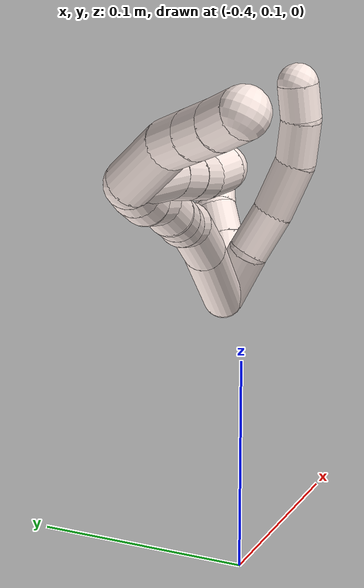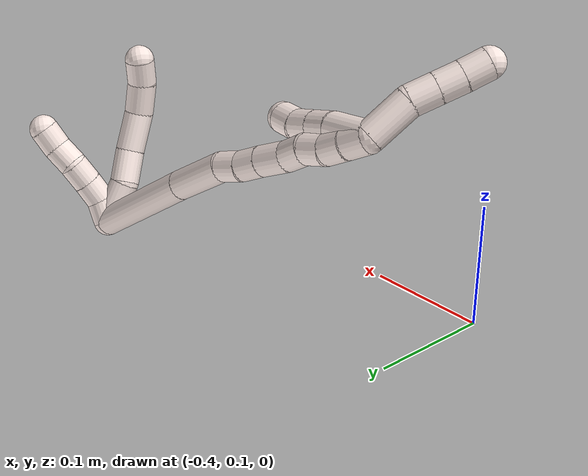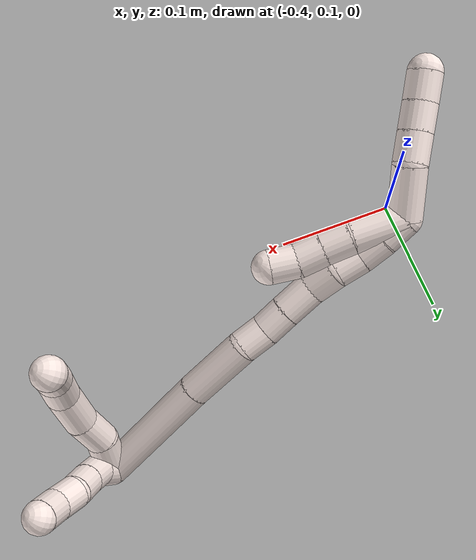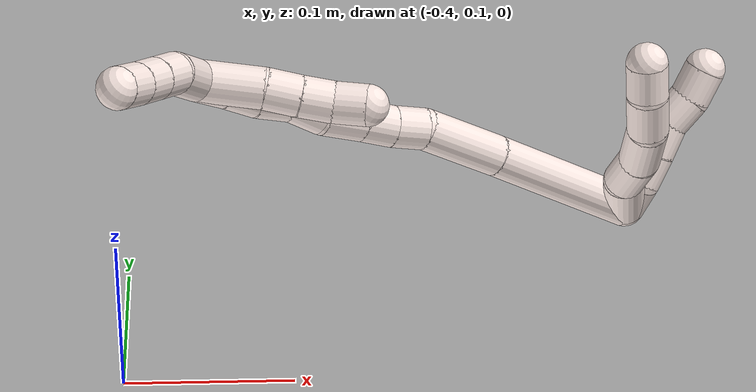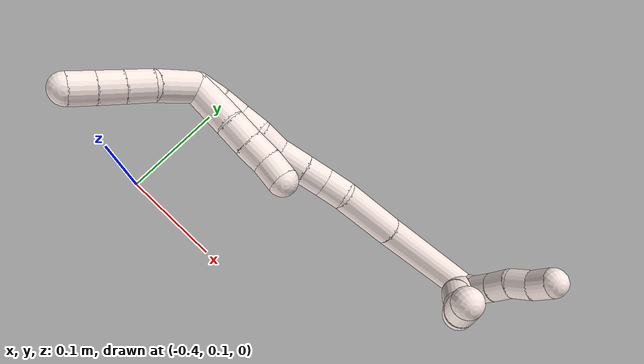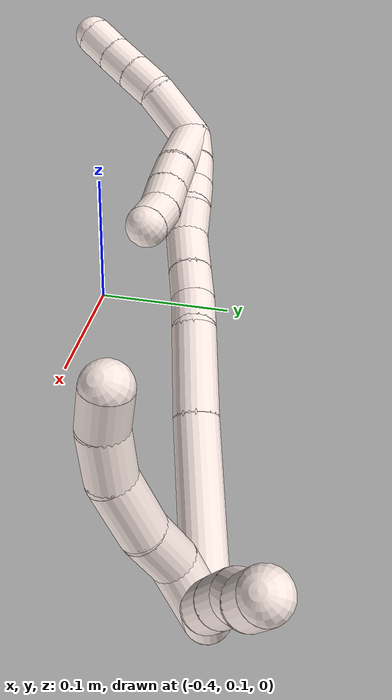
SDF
<sdf version="1.7">
 <world name="default">
  <model name="11">
   <static>0</static>
   <link name="11">
    <collision name="collision-cylinder-e_1_2_8">
     <pose>-0.011289 -0.004387 -0.014351 2.84496 -0.644927 -2.30058</pose>
     <geometry><cylinder><radius>0.0125</radius><length>0.037557</length></cylinder></geometry>
     <surface>
      <friction><ode><mu>1.16</mu><mu2>1.16</mu2><slip1>0</slip1><slip2>0</slip2></ode></friction>
      <contact><ode><kp>1e+06</kp><kd>1</kd><max_vel>0</max_vel><min_depth>0.001</min_depth></ode></contact>
     </surface>
    </collision>
    <visual name="visual-cylinder-e_1_2_8">
     <pose>-0.011289 -0.004387 -0.014351 2.84496 -0.644927 -2.30058</pose>
     <geometry><cylinder><radius>0.0125</radius><length>0.037557</length></cylinder></geometry>
     <material><ambient>1 0.933333 0.909804 1</ambient></material>
    </visual>
    <collision name="collision-cylinder-e_2_8_9">
     <pose>-0.02783 -0.009591 -0.041961 3.07995 -0.376565 -2.82077</pose>
     <geometry><cylinder><radius>0.0125</radius><length>0.028568</length></cylinder></geometry>
     <surface>
      <friction><ode><mu>1.16</mu><mu2>1.16</mu2><slip1>0</slip1><slip2>0</slip2></ode></friction>
      <contact><ode><kp>1e+06</kp><kd>1</kd><max_vel>0</max_vel><min_depth>0.001</min_depth></ode></contact>
     </surface>
    </collision>
    <visual name="visual-cylinder-e_2_8_9">
     <pose>-0.02783 -0.009591 -0.041961 3.07995 -0.376565 -2.82077</pose>
     <geometry><cylinder><radius>0.0125</radius><length>0.028568</length></cylinder></geometry>
     <material><ambient>1 0.933333 0.909804 1</ambient></material>
    </visual>
    <collision name="collision-cylinder-e_3_9_10">
     <pose>-0.041002 -0.014354 -0.070257 2.88508 -0.471154 -2.15554</pose>
     <geometry><cylinder><radius>0.0125</radius><length>0.034896</length></cylinder></geometry>
     <surface>
      <friction><ode><mu>1.16</mu><mu2>1.16</mu2><slip1>0</slip1><slip2>0</slip2></ode></friction>
      <contact><ode><kp>1e+06</kp><kd>1</kd><max_vel>0</max_vel><min_depth>0.001</min_depth></ode></contact>
     </surface>
    </collision>
    <visual name="visual-cylinder-e_3_9_10">
     <pose>-0.041002 -0.014354 -0.070257 2.88508 -0.471154 -2.15554</pose>
     <geometry><cylinder><radius>0.0125</radius><length>0.034896</length></cylinder></geometry>
     <material><ambient>1 0.933333 0.909804 1</ambient></material>
    </visual>
    <collision name="collision-cylinder-e_4_10_11">
     <pose>-0.053907 -0.025089 -0.096103 2.58061 -0.372306 -1.158</pose>
     <geometry><cylinder><radius>0.0125</radius><length>0.027406</length></cylinder></geometry>
     <surface>
      <friction><ode><mu>1.16</mu><mu2>1.16</mu2><slip1>0</slip1><slip2>0</slip2></ode></friction>
      <contact><ode><kp>1e+06</kp><kd>1</kd><max_vel>0</max_vel><min_depth>0.001</min_depth></ode></contact>
     </surface>
    </collision>
    <visual name="visual-cylinder-e_4_10_11">
     <pose>-0.053907 -0.025089 -0.096103 2.58061 -0.372306 -1.158</pose>
     <geometry><cylinder><radius>0.0125</radius><length>0.027406</length></cylinder></geometry>
     <material><ambient>1 0.933333 0.909804 1</ambient></material>
    </visual>
    <collision name="collision-cylinder-e_5_11_6">
     <pose>-0.060867 -0.038795 -0.11495 2.43125 -0.184144 -0.487966</pose>
     <geometry><cylinder><radius>0.0125</radius><length>0.021572</length></cylinder></geometry>
     <surface>
      <friction><ode><mu>1.16</mu><mu2>1.16</mu2><slip1>0</slip1><slip2>0</slip2></ode></friction>
      <contact><ode><kp>1e+06</kp><kd>1</kd><max_vel>0</max_vel><min_depth>0.001</min_depth></ode></contact>
     </surface>
    </collision>
    <visual name="visual-cylinder-e_5_11_6">
     <pose>-0.060867 -0.038795 -0.11495 2.43125 -0.184144 -0.487966</pose>
     <geometry><cylinder><radius>0.0125</radius><length>0.021572</length></cylinder></geometry>
     <material><ambient>1 0.933333 0.909804 1</ambient></material>
    </visual>
    <collision name="collision-cylinder-e_1_2_12">
     <pose>0.000796 -0.002802 -0.009566 2.85667 0.079652 0.541943</pose>
     <geometry><cylinder><radius>0.0125</radius><length>0.02</length></cylinder></geometry>
     <surface>
      <friction><ode><mu>1.16</mu><mu2>1.16</mu2><slip1>0</slip1><slip2>0</slip2></ode></friction>
      <contact><ode><kp>1e+06</kp><kd>1</kd><max_vel>0</max_vel><min_depth>0.001</min_depth></ode></contact>
     </surface>
    </collision>
    <visual name="visual-cylinder-e_1_2_12">
     <pose>0.000796 -0.002802 -0.009566 2.85667 0.079652 0.541943</pose>
     <geometry><cylinder><radius>0.0125</radius><length>0.02</length></cylinder></geometry>
     <material><ambient>1 0.933333 0.909804 1</ambient></material>
    </visual>
    <collision name="collision-cylinder-e_2_12_13">
     <pose>0.005115 -0.010077 -0.027353 2.64323 0.360075 1.24178</pose>
     <geometry><cylinder><radius>0.0125</radius><length>0.02</length></cylinder></geometry>
     <surface>
      <friction><ode><mu>1.16</mu><mu2>1.16</mu2><slip1>0</slip1><slip2>0</slip2></ode></friction>
      <contact><ode><kp>1e+06</kp><kd>1</kd><max_vel>0</max_vel><min_depth>0.001</min_depth></ode></contact>
     </surface>
    </collision>
    <visual name="visual-cylinder-e_2_12_13">
     <pose>0.005115 -0.010077 -0.027353 2.64323 0.360075 1.24178</pose>
     <geometry><cylinder><radius>0.0125</radius><length>0.02</length></cylinder></geometry>
     <material><ambient>1 0.933333 0.909804 1</ambient></material>
    </visual>
    <collision name="collision-cylinder-e_3_13_14">
     <pose>0.012353 -0.019418 -0.04348 2.58978 0.380643 1.19497</pose>
     <geometry><cylinder><radius>0.0125</radius><length>0.02</length></cylinder></geometry>
     <surface>
      <friction><ode><mu>1.16</mu><mu2>1.16</mu2><slip1>0</slip1><slip2>0</slip2></ode></friction>
      <contact><ode><kp>1e+06</kp><kd>1</kd><max_vel>0</max_vel><min_depth>0.001</min_depth></ode></contact>
     </surface>
    </collision>
    <visual name="visual-cylinder-e_3_13_14">
     <pose>0.012353 -0.019418 -0.04348 2.58978 0.380643 1.19497</pose>
     <geometry><cylinder><radius>0.0125</radius><length>0.02</length></cylinder></geometry>
     <material><ambient>1 0.933333 0.909804 1</ambient></material>
    </visual>
    <collision name="collision-cylinder-e_4_14_15">
     <pose>0.021075 -0.026404 -0.059779 2.8943 0.524349 2.27417</pose>
     <geometry><cylinder><radius>0.0125</radius><length>0.02</length></cylinder></geometry>
     <surface>
      <friction><ode><mu>1.16</mu><mu2>1.16</mu2><slip1>0</slip1><slip2>0</slip2></ode></friction>
      <contact><ode><kp>1e+06</kp><kd>1</kd><max_vel>0</max_vel><min_depth>0.001</min_depth></ode></contact>
     </surface>
    </collision>
    <visual name="visual-cylinder-e_4_14_15">
     <pose>0.021075 -0.026404 -0.059779 2.8943 0.524349 2.27417</pose>
     <geometry><cylinder><radius>0.0125</radius><length>0.02</length></cylinder></geometry>
     <material><ambient>1 0.933333 0.909804 1</ambient></material>
    </visual>
    <collision name="collision-cylinder-e_5_15_5">
     <pose>0.029502 -0.032793 -0.076543 2.6698 0.349132 1.26598</pose>
     <geometry><cylinder><radius>0.0125</radius><length>0.02</length></cylinder></geometry>
     <surface>
      <friction><ode><mu>1.16</mu><mu2>1.16</mu2><slip1>0</slip1><slip2>0</slip2></ode></friction>
      <contact><ode><kp>1e+06</kp><kd>1</kd><max_vel>0</max_vel><min_depth>0.001</min_depth></ode></contact>
     </surface>
    </collision>
    <visual name="visual-cylinder-e_5_15_5">
     <pose>0.029502 -0.032793 -0.076543 2.6698 0.349132 1.26598</pose>
     <geometry><cylinder><radius>0.0125</radius><length>0.02</length></cylinder></geometry>
     <material><ambient>1 0.933333 0.909804 1</ambient></material>
    </visual>
    <collision name="collision-cylinder-e_1_2_16">
     <pose>-0.039451 -0.030685 -0.001912 1.63301 -0.908798 -0.958836</pose>
     <geometry><cylinder><radius>0.0125</radius><length>0.100033</length></cylinder></geometry>
     <surface>
      <friction><ode><mu>1.16</mu><mu2>1.16</mu2><slip1>0</slip1><slip2>0</slip2></ode></friction>
      <contact><ode><kp>1e+06</kp><kd>1</kd><max_vel>0</max_vel><min_depth>0.001</min_depth></ode></contact>
     </surface>
    </collision>
    <visual name="visual-cylinder-e_1_2_16">
     <pose>-0.039451 -0.030685 -0.001912 1.63301 -0.908798 -0.958836</pose>
     <geometry><cylinder><radius>0.0125</radius><length>0.100033</length></cylinder></geometry>
     <material><ambient>1 0.933333 0.909804 1</ambient></material>
    </visual>
    <collision name="collision-cylinder-e_2_16_17">
     <pose>-0.099208 -0.077742 -0.003778 1.56802 -0.892231 -0.890069</pose>
     <geometry><cylinder><radius>0.0125</radius><length>0.052166</length></cylinder></geometry>
     <surface>
      <friction><ode><mu>1.16</mu><mu2>1.16</mu2><slip1>0</slip1><slip2>0</slip2></ode></friction>
      <contact><ode><kp>1e+06</kp><kd>1</kd><max_vel>0</max_vel><min_depth>0.001</min_depth></ode></contact>
     </surface>
    </collision>
    <visual name="visual-cylinder-e_2_16_17">
     <pose>-0.099208 -0.077742 -0.003778 1.56802 -0.892231 -0.890069</pose>
     <geometry><cylinder><radius>0.0125</radius><length>0.052166</length></cylinder></geometry>
     <material><ambient>1 0.933333 0.909804 1</ambient></material>
    </visual>
    <collision name="collision-cylinder-e_3_17_18">
     <pose>-0.127737 -0.099533 -0.00095 1.09649 -0.93331 -0.596914</pose>
     <geometry><cylinder><radius>0.0125</radius><length>0.02047</length></cylinder></geometry>
     <surface>
      <friction><ode><mu>1.16</mu><mu2>1.16</mu2><slip1>0</slip1><slip2>0</slip2></ode></friction>
      <contact><ode><kp>1e+06</kp><kd>1</kd><max_vel>0</max_vel><min_depth>0.001</min_depth></ode></contact>
     </surface>
    </collision>
    <visual name="visual-cylinder-e_3_17_18">
     <pose>-0.127737 -0.099533 -0.00095 1.09649 -0.93331 -0.596914</pose>
     <geometry><cylinder><radius>0.0125</radius><length>0.02047</length></cylinder></geometry>
     <material><ambient>1 0.933333 0.909804 1</ambient></material>
    </visual>
    <collision name="collision-cylinder-e_4_18_19">
     <pose>-0.144417 -0.11048 0.00292 1.37648 -0.983045 -0.829451</pose>
     <geometry><cylinder><radius>0.0125</radius><length>0.020321</length></cylinder></geometry>
     <surface>
      <friction><ode><mu>1.16</mu><mu2>1.16</mu2><slip1>0</slip1><slip2>0</slip2></ode></friction>
      <contact><ode><kp>1e+06</kp><kd>1</kd><max_vel>0</max_vel><min_depth>0.001</min_depth></ode></contact>
     </surface>
    </collision>
    <visual name="visual-cylinder-e_4_18_19">
     <pose>-0.144417 -0.11048 0.00292 1.37648 -0.983045 -0.829451</pose>
     <geometry><cylinder><radius>0.0125</radius><length>0.020321</length></cylinder></geometry>
     <material><ambient>1 0.933333 0.909804 1</ambient></material>
    </visual>
    <collision name="collision-cylinder-e_5_19_20">
     <pose>-0.163392 -0.122821 0.005874 1.30345 -0.979424 -0.772461</pose>
     <geometry><cylinder><radius>0.0125</radius><length>0.025341</length></cylinder></geometry>
     <surface>
      <friction><ode><mu>1.16</mu><mu2>1.16</mu2><slip1>0</slip1><slip2>0</slip2></ode></friction>
      <contact><ode><kp>1e+06</kp><kd>1</kd><max_vel>0</max_vel><min_depth>0.001</min_depth></ode></contact>
     </surface>
    </collision>
    <visual name="visual-cylinder-e_5_19_20">
     <pose>-0.163392 -0.122821 0.005874 1.30345 -0.979424 -0.772461</pose>
     <geometry><cylinder><radius>0.0125</radius><length>0.025341</length></cylinder></geometry>
     <material><ambient>1 0.933333 0.909804 1</ambient></material>
    </visual>
    <collision name="collision-cylinder-e_6_20_21">
     <pose>-0.181482 -0.137211 0.008249 1.50374 -0.783952 -0.737692</pose>
     <geometry><cylinder><radius>0.0125</radius><length>0.021448</length></cylinder></geometry>
     <surface>
      <friction><ode><mu>1.16</mu><mu2>1.16</mu2><slip1>0</slip1><slip2>0</slip2></ode></friction>
      <contact><ode><kp>1e+06</kp><kd>1</kd><max_vel>0</max_vel><min_depth>0.001</min_depth></ode></contact>
     </surface>
    </collision>
    <visual name="visual-cylinder-e_6_20_21">
     <pose>-0.181482 -0.137211 0.008249 1.50374 -0.783952 -0.737692</pose>
     <geometry><cylinder><radius>0.0125</radius><length>0.021448</length></cylinder></geometry>
     <material><ambient>1 0.933333 0.909804 1</ambient></material>
    </visual>
    <collision name="collision-cylinder-e_7_21_22">
     <pose>-0.196468 -0.150685 0.012082 1.05756 -0.830737 -0.504394</pose>
     <geometry><cylinder><radius>0.0125</radius><length>0.020079</length></cylinder></geometry>
     <surface>
      <friction><ode><mu>1.16</mu><mu2>1.16</mu2><slip1>0</slip1><slip2>0</slip2></ode></friction>
      <contact><ode><kp>1e+06</kp><kd>1</kd><max_vel>0</max_vel><min_depth>0.001</min_depth></ode></contact>
     </surface>
    </collision>
    <visual name="visual-cylinder-e_7_21_22">
     <pose>-0.196468 -0.150685 0.012082 1.05756 -0.830737 -0.504394</pose>
     <geometry><cylinder><radius>0.0125</radius><length>0.020079</length></cylinder></geometry>
     <material><ambient>1 0.933333 0.909804 1</ambient></material>
    </visual>
    <collision name="collision-cylinder-e_8_22_23">
     <pose>-0.211575 -0.162987 0.016408 1.41563 -0.870667 -0.757553</pose>
     <geometry><cylinder><radius>0.0125</radius><length>0.02012</length></cylinder></geometry>
     <surface>
      <friction><ode><mu>1.16</mu><mu2>1.16</mu2><slip1>0</slip1><slip2>0</slip2></ode></friction>
      <contact><ode><kp>1e+06</kp><kd>1</kd><max_vel>0</max_vel><min_depth>0.001</min_depth></ode></contact>
     </surface>
    </collision>
    <visual name="visual-cylinder-e_8_22_23">
     <pose>-0.211575 -0.162987 0.016408 1.41563 -0.870667 -0.757553</pose>
     <geometry><cylinder><radius>0.0125</radius><length>0.02012</length></cylinder></geometry>
     <material><ambient>1 0.933333 0.909804 1</ambient></material>
    </visual>
    <collision name="collision-cylinder-e_9_23_1">
     <pose>-0.227473 -0.175083 0.018126 1.44549 -0.960601 -0.861426</pose>
     <geometry><cylinder><radius>0.0125</radius><length>0.020022</length></cylinder></geometry>
     <surface>
      <friction><ode><mu>1.16</mu><mu2>1.16</mu2><slip1>0</slip1><slip2>0</slip2></ode></friction>
      <contact><ode><kp>1e+06</kp><kd>1</kd><max_vel>0</max_vel><min_depth>0.001</min_depth></ode></contact>
     </surface>
    </collision>
    <visual name="visual-cylinder-e_9_23_1">
     <pose>-0.227473 -0.175083 0.018126 1.44549 -0.960601 -0.861426</pose>
     <geometry><cylinder><radius>0.0125</radius><length>0.020022</length></cylinder></geometry>
     <material><ambient>1 0.933333 0.909804 1</ambient></material>
    </visual>
    <collision name="collision-cylinder-e_1_1_24">
     <pose>-0.224136 -0.168184 0.009491 -2.20969 0.634409 -1.15671</pose>
     <geometry><cylinder><radius>0.0125</radius><length>0.038944</length></cylinder></geometry>
     <surface>
      <friction><ode><mu>1.16</mu><mu2>1.16</mu2><slip1>0</slip1><slip2>0</slip2></ode></friction>
      <contact><ode><kp>1e+06</kp><kd>1</kd><max_vel>0</max_vel><min_depth>0.001</min_depth></ode></contact>
     </surface>
    </collision>
    <visual name="visual-cylinder-e_1_1_24">
     <pose>-0.224136 -0.168184 0.009491 -2.20969 0.634409 -1.15671</pose>
     <geometry><cylinder><radius>0.0125</radius><length>0.038944</length></cylinder></geometry>
     <material><ambient>1 0.933333 0.909804 1</ambient></material>
    </visual>
    <collision name="collision-cylinder-e_2_24_25">
     <pose>-0.206144 -0.148359 -0.003631 -2.05114 0.668996 -1.04066</pose>
     <geometry><cylinder><radius>0.0125</radius><length>0.020802</length></cylinder></geometry>
     <surface>
      <friction><ode><mu>1.16</mu><mu2>1.16</mu2><slip1>0</slip1><slip2>0</slip2></ode></friction>
      <contact><ode><kp>1e+06</kp><kd>1</kd><max_vel>0</max_vel><min_depth>0.001</min_depth></ode></contact>
     </surface>
    </collision>
    <visual name="visual-cylinder-e_2_24_25">
     <pose>-0.206144 -0.148359 -0.003631 -2.05114 0.668996 -1.04066</pose>
     <geometry><cylinder><radius>0.0125</radius><length>0.020802</length></cylinder></geometry>
     <material><ambient>1 0.933333 0.909804 1</ambient></material>
    </visual>
    <collision name="collision-cylinder-e_3_25_26">
     <pose>-0.193117 -0.134473 -0.01108 -2.07605 0.71328 -1.12703</pose>
     <geometry><cylinder><radius>0.0125</radius><length>0.0201</length></cylinder></geometry>
     <surface>
      <friction><ode><mu>1.16</mu><mu2>1.16</mu2><slip1>0</slip1><slip2>0</slip2></ode></friction>
      <contact><ode><kp>1e+06</kp><kd>1</kd><max_vel>0</max_vel><min_depth>0.001</min_depth></ode></contact>
     </surface>
    </collision>
    <visual name="visual-cylinder-e_3_25_26">
     <pose>-0.193117 -0.134473 -0.01108 -2.07605 0.71328 -1.12703</pose>
     <geometry><cylinder><radius>0.0125</radius><length>0.0201</length></cylinder></geometry>
     <material><ambient>1 0.933333 0.909804 1</ambient></material>
    </visual>
    <collision name="collision-cylinder-e_4_26_4">
     <pose>-0.181494 -0.121335 -0.020589 -2.30292 0.524617 -1.08423</pose>
     <geometry><cylinder><radius>0.0125</radius><length>0.020153</length></cylinder></geometry>
     <surface>
      <friction><ode><mu>1.16</mu><mu2>1.16</mu2><slip1>0</slip1><slip2>0</slip2></ode></friction>
      <contact><ode><kp>1e+06</kp><kd>1</kd><max_vel>0</max_vel><min_depth>0.001</min_depth></ode></contact>
     </surface>
    </collision>
    <visual name="visual-cylinder-e_4_26_4">
     <pose>-0.181494 -0.121335 -0.020589 -2.30292 0.524617 -1.08423</pose>
     <geometry><cylinder><radius>0.0125</radius><length>0.020153</length></cylinder></geometry>
     <material><ambient>1 0.933333 0.909804 1</ambient></material>
    </visual>
    <collision name="collision-cylinder-e_1_1_27">
     <pose>-0.252068 -0.18257 0.009775 2.94609 -1.05727 -2.8089</pose>
     <geometry><cylinder><radius>0.0125</radius><length>0.037637</length></cylinder></geometry>
     <surface>
      <friction><ode><mu>1.16</mu><mu2>1.16</mu2><slip1>0</slip1><slip2>0</slip2></ode></friction>
      <contact><ode><kp>1e+06</kp><kd>1</kd><max_vel>0</max_vel><min_depth>0.001</min_depth></ode></contact>
     </surface>
    </collision>
    <visual name="visual-cylinder-e_1_1_27">
     <pose>-0.252068 -0.18257 0.009775 2.94609 -1.05727 -2.8089</pose>
     <geometry><cylinder><radius>0.0125</radius><length>0.037637</length></cylinder></geometry>
     <material><ambient>1 0.933333 0.909804 1</ambient></material>
    </visual>
    <collision name="collision-cylinder-e_2_27_28">
     <pose>-0.27898 -0.184204 -0.001608 -3.07168 -1.35373 3.0546</pose>
     <geometry><cylinder><radius>0.0125</radius><length>0.021546</length></cylinder></geometry>
     <surface>
      <friction><ode><mu>1.16</mu><mu2>1.16</mu2><slip1>0</slip1><slip2>0</slip2></ode></friction>
      <contact><ode><kp>1e+06</kp><kd>1</kd><max_vel>0</max_vel><min_depth>0.001</min_depth></ode></contact>
     </surface>
    </collision>
    <visual name="visual-cylinder-e_2_27_28">
     <pose>-0.27898 -0.184204 -0.001608 -3.07168 -1.35373 3.0546</pose>
     <geometry><cylinder><radius>0.0125</radius><length>0.021546</length></cylinder></geometry>
     <material><ambient>1 0.933333 0.909804 1</ambient></material>
    </visual>
    <collision name="collision-cylinder-e_3_28_29">
     <pose>-0.29939 -0.183928 -0.006049 -3.08795 -1.3587 3.07517</pose>
     <geometry><cylinder><radius>0.0125</radius><length>0.020233</length></cylinder></geometry>
     <surface>
      <friction><ode><mu>1.16</mu><mu2>1.16</mu2><slip1>0</slip1><slip2>0</slip2></ode></friction>
      <contact><ode><kp>1e+06</kp><kd>1</kd><max_vel>0</max_vel><min_depth>0.001</min_depth></ode></contact>
     </surface>
    </collision>
    <visual name="visual-cylinder-e_3_28_29">
     <pose>-0.29939 -0.183928 -0.006049 -3.08795 -1.3587 3.07517</pose>
     <geometry><cylinder><radius>0.0125</radius><length>0.020233</length></cylinder></geometry>
     <material><ambient>1 0.933333 0.909804 1</ambient></material>
    </visual>
    <collision name="collision-cylinder-e_4_29_3">
     <pose>-0.319244 -0.183862 -0.010753 3.12282 -1.3177 -3.11734</pose>
     <geometry><cylinder><radius>0.0125</radius><length>0.020583</length></cylinder></geometry>
     <surface>
      <friction><ode><mu>1.16</mu><mu2>1.16</mu2><slip1>0</slip1><slip2>0</slip2></ode></friction>
      <contact><ode><kp>1e+06</kp><kd>1</kd><max_vel>0</max_vel><min_depth>0.001</min_depth></ode></contact>
     </surface>
    </collision>
    <visual name="visual-cylinder-e_4_29_3">
     <pose>-0.319244 -0.183862 -0.010753 3.12282 -1.3177 -3.11734</pose>
     <geometry><cylinder><radius>0.0125</radius><length>0.020583</length></cylinder></geometry>
     <material><ambient>1 0.933333 0.909804 1</ambient></material>
    </visual>
    <collision name="collision-sphere-3">
     <pose>-0.329208 -0.18391 -0.013329 0 -0 0</pose>
     <geometry><sphere><radius>0.0125</radius></sphere></geometry>
     <surface>
      <friction><ode><mu>1.16</mu><mu2>1.16</mu2><slip1>0</slip1><slip2>0</slip2></ode></friction>
      <contact><ode><kp>1e+06</kp><kd>1</kd><max_vel>0</max_vel><min_depth>0.001</min_depth></ode></contact>
     </surface>
    </collision>
    <visual name="visual-sphere-3">
     <pose>-0.329208 -0.18391 -0.013329 0 -0 0</pose>
     <geometry><sphere><radius>0.0125</radius></sphere></geometry>
     <material><ambient>1 0.933333 0.909804 1</ambient></material>
    </visual>
    <collision name="collision-sphere-29">
     <pose>-0.30928 -0.183813 -0.008176 0 -0 0</pose>
     <geometry><sphere><radius>0.0125</radius></sphere></geometry>
     <surface>
      <friction><ode><mu>1.16</mu><mu2>1.16</mu2><slip1>0</slip1><slip2>0</slip2></ode></friction>
      <contact><ode><kp>1e+06</kp><kd>1</kd><max_vel>0</max_vel><min_depth>0.001</min_depth></ode></contact>
     </surface>
    </collision>
    <visual name="visual-sphere-29">
     <pose>-0.30928 -0.183813 -0.008176 0 -0 0</pose>
     <geometry><sphere><radius>0.0125</radius></sphere></geometry>
     <material><ambient>1 0.933333 0.909804 1</ambient></material>
    </visual>
    <collision name="collision-sphere-28">
     <pose>-0.289501 -0.184042 -0.003923 0 -0 0</pose>
     <geometry><sphere><radius>0.0125</radius></sphere></geometry>
     <surface>
      <friction><ode><mu>1.16</mu><mu2>1.16</mu2><slip1>0</slip1><slip2>0</slip2></ode></friction>
      <contact><ode><kp>1e+06</kp><kd>1</kd><max_vel>0</max_vel><min_depth>0.001</min_depth></ode></contact>
     </surface>
    </collision>
    <visual name="visual-sphere-28">
     <pose>-0.289501 -0.184042 -0.003923 0 -0 0</pose>
     <geometry><sphere><radius>0.0125</radius></sphere></geometry>
     <material><ambient>1 0.933333 0.909804 1</ambient></material>
    </visual>
    <collision name="collision-sphere-27">
     <pose>-0.26846 -0.184366 0.000706 0 -0 0</pose>
     <geometry><sphere><radius>0.0125</radius></sphere></geometry>
     <surface>
      <friction><ode><mu>1.16</mu><mu2>1.16</mu2><slip1>0</slip1><slip2>0</slip2></ode></friction>
      <contact><ode><kp>1e+06</kp><kd>1</kd><max_vel>0</max_vel><min_depth>0.001</min_depth></ode></contact>
     </surface>
    </collision>
    <visual name="visual-sphere-27">
     <pose>-0.26846 -0.184366 0.000706 0 -0 0</pose>
     <geometry><sphere><radius>0.0125</radius></sphere></geometry>
     <material><ambient>1 0.933333 0.909804 1</ambient></material>
    </visual>
    <collision name="collision-sphere-4">
     <pose>-0.176447 -0.114849 -0.026419 0 -0 0</pose>
     <geometry><sphere><radius>0.0125</radius></sphere></geometry>
     <surface>
      <friction><ode><mu>1.16</mu><mu2>1.16</mu2><slip1>0</slip1><slip2>0</slip2></ode></friction>
      <contact><ode><kp>1e+06</kp><kd>1</kd><max_vel>0</max_vel><min_depth>0.001</min_depth></ode></contact>
     </surface>
    </collision>
    <visual name="visual-sphere-4">
     <pose>-0.176447 -0.114849 -0.026419 0 -0 0</pose>
     <geometry><sphere><radius>0.0125</radius></sphere></geometry>
     <material><ambient>1 0.933333 0.909804 1</ambient></material>
    </visual>
    <collision name="collision-sphere-26">
     <pose>-0.186541 -0.127822 -0.014759 0 -0 0</pose>
     <geometry><sphere><radius>0.0125</radius></sphere></geometry>
     <surface>
      <friction><ode><mu>1.16</mu><mu2>1.16</mu2><slip1>0</slip1><slip2>0</slip2></ode></friction>
      <contact><ode><kp>1e+06</kp><kd>1</kd><max_vel>0</max_vel><min_depth>0.001</min_depth></ode></contact>
     </surface>
    </collision>
    <visual name="visual-sphere-26">
     <pose>-0.186541 -0.127822 -0.014759 0 -0 0</pose>
     <geometry><sphere><radius>0.0125</radius></sphere></geometry>
     <material><ambient>1 0.933333 0.909804 1</ambient></material>
    </visual>
    <collision name="collision-sphere-25">
     <pose>-0.199693 -0.141123 -0.007401 0 -0 0</pose>
     <geometry><sphere><radius>0.0125</radius></sphere></geometry>
     <surface>
      <friction><ode><mu>1.16</mu><mu2>1.16</mu2><slip1>0</slip1><slip2>0</slip2></ode></friction>
      <contact><ode><kp>1e+06</kp><kd>1</kd><max_vel>0</max_vel><min_depth>0.001</min_depth></ode></contact>
     </surface>
    </collision>
    <visual name="visual-sphere-25">
     <pose>-0.199693 -0.141123 -0.007401 0 -0 0</pose>
     <geometry><sphere><radius>0.0125</radius></sphere></geometry>
     <material><ambient>1 0.933333 0.909804 1</ambient></material>
    </visual>
    <collision name="collision-sphere-24">
     <pose>-0.212595 -0.155595 0.000139 0 -0 0</pose>
     <geometry><sphere><radius>0.0125</radius></sphere></geometry>
     <surface>
      <friction><ode><mu>1.16</mu><mu2>1.16</mu2><slip1>0</slip1><slip2>0</slip2></ode></friction>
      <contact><ode><kp>1e+06</kp><kd>1</kd><max_vel>0</max_vel><min_depth>0.001</min_depth></ode></contact>
     </surface>
    </collision>
    <visual name="visual-sphere-24">
     <pose>-0.212595 -0.155595 0.000139 0 -0 0</pose>
     <geometry><sphere><radius>0.0125</radius></sphere></geometry>
     <material><ambient>1 0.933333 0.909804 1</ambient></material>
    </visual>
    <collision name="collision-sphere-1">
     <pose>-0.235677 -0.180774 0.018843 0 -0 0</pose>
     <geometry><sphere><radius>0.0125</radius></sphere></geometry>
     <surface>
      <friction><ode><mu>1.16</mu><mu2>1.16</mu2><slip1>0</slip1><slip2>0</slip2></ode></friction>
      <contact><ode><kp>1e+06</kp><kd>1</kd><max_vel>0</max_vel><min_depth>0.001</min_depth></ode></contact>
     </surface>
    </collision>
    <visual name="visual-sphere-1">
     <pose>-0.235677 -0.180774 0.018843 0 -0 0</pose>
     <geometry><sphere><radius>0.0125</radius></sphere></geometry>
     <material><ambient>1 0.933333 0.909804 1</ambient></material>
    </visual>
    <collision name="collision-sphere-23">
     <pose>-0.219268 -0.169391 0.017409 0 -0 0</pose>
     <geometry><sphere><radius>0.0125</radius></sphere></geometry>
     <surface>
      <friction><ode><mu>1.16</mu><mu2>1.16</mu2><slip1>0</slip1><slip2>0</slip2></ode></friction>
      <contact><ode><kp>1e+06</kp><kd>1</kd><max_vel>0</max_vel><min_depth>0.001</min_depth></ode></contact>
     </surface>
    </collision>
    <visual name="visual-sphere-23">
     <pose>-0.219268 -0.169391 0.017409 0 -0 0</pose>
     <geometry><sphere><radius>0.0125</radius></sphere></geometry>
     <material><ambient>1 0.933333 0.909804 1</ambient></material>
    </visual>
    <collision name="collision-sphere-22">
     <pose>-0.203882 -0.156583 0.015406 0 -0 0</pose>
     <geometry><sphere><radius>0.0125</radius></sphere></geometry>
     <surface>
      <friction><ode><mu>1.16</mu><mu2>1.16</mu2><slip1>0</slip1><slip2>0</slip2></ode></friction>
      <contact><ode><kp>1e+06</kp><kd>1</kd><max_vel>0</max_vel><min_depth>0.001</min_depth></ode></contact>
     </surface>
    </collision>
    <visual name="visual-sphere-22">
     <pose>-0.203882 -0.156583 0.015406 0 -0 0</pose>
     <geometry><sphere><radius>0.0125</radius></sphere></geometry>
     <material><ambient>1 0.933333 0.909804 1</ambient></material>
    </visual>
    <collision name="collision-sphere-21">
     <pose>-0.189054 -0.144788 0.008758 0 -0 0</pose>
     <geometry><sphere><radius>0.0125</radius></sphere></geometry>
     <surface>
      <friction><ode><mu>1.16</mu><mu2>1.16</mu2><slip1>0</slip1><slip2>0</slip2></ode></friction>
      <contact><ode><kp>1e+06</kp><kd>1</kd><max_vel>0</max_vel><min_depth>0.001</min_depth></ode></contact>
     </surface>
    </collision>
    <visual name="visual-sphere-21">
     <pose>-0.189054 -0.144788 0.008758 0 -0 0</pose>
     <geometry><sphere><radius>0.0125</radius></sphere></geometry>
     <material><ambient>1 0.933333 0.909804 1</ambient></material>
    </visual>
    <collision name="collision-sphere-6">
     <pose>-0.062842 -0.04571 -0.12299 0 -0 0</pose>
     <geometry><sphere><radius>0.0125</radius></sphere></geometry>
     <surface>
      <friction><ode><mu>1.16</mu><mu2>1.16</mu2><slip1>0</slip1><slip2>0</slip2></ode></friction>
      <contact><ode><kp>1e+06</kp><kd>1</kd><max_vel>0</max_vel><min_depth>0.001</min_depth></ode></contact>
     </surface>
    </collision>
    <visual name="visual-sphere-6">
     <pose>-0.062842 -0.04571 -0.12299 0 -0 0</pose>
     <geometry><sphere><radius>0.0125</radius></sphere></geometry>
     <material><ambient>1 0.933333 0.909804 1</ambient></material>
    </visual>
    <collision name="collision-sphere-11">
     <pose>-0.058892 -0.03188 -0.106911 0 -0 0</pose>
     <geometry><sphere><radius>0.0125</radius></sphere></geometry>
     <surface>
      <friction><ode><mu>1.16</mu><mu2>1.16</mu2><slip1>0</slip1><slip2>0</slip2></ode></friction>
      <contact><ode><kp>1e+06</kp><kd>1</kd><max_vel>0</max_vel><min_depth>0.001</min_depth></ode></contact>
     </surface>
    </collision>
    <visual name="visual-sphere-11">
     <pose>-0.058892 -0.03188 -0.106911 0 -0 0</pose>
     <geometry><sphere><radius>0.0125</radius></sphere></geometry>
     <material><ambient>1 0.933333 0.909804 1</ambient></material>
    </visual>
    <collision name="collision-sphere-10">
     <pose>-0.048922 -0.018298 -0.085295 0 -0 0</pose>
     <geometry><sphere><radius>0.0125</radius></sphere></geometry>
     <surface>
      <friction><ode><mu>1.16</mu><mu2>1.16</mu2><slip1>0</slip1><slip2>0</slip2></ode></friction>
      <contact><ode><kp>1e+06</kp><kd>1</kd><max_vel>0</max_vel><min_depth>0.001</min_depth></ode></contact>
     </surface>
    </collision>
    <visual name="visual-sphere-10">
     <pose>-0.048922 -0.018298 -0.085295 0 -0 0</pose>
     <geometry><sphere><radius>0.0125</radius></sphere></geometry>
     <material><ambient>1 0.933333 0.909804 1</ambient></material>
    </visual>
    <collision name="collision-sphere-9">
     <pose>-0.033082 -0.01041 -0.055219 0 -0 0</pose>
     <geometry><sphere><radius>0.0125</radius></sphere></geometry>
     <surface>
      <friction><ode><mu>1.16</mu><mu2>1.16</mu2><slip1>0</slip1><slip2>0</slip2></ode></friction>
      <contact><ode><kp>1e+06</kp><kd>1</kd><max_vel>0</max_vel><min_depth>0.001</min_depth></ode></contact>
     </surface>
    </collision>
    <visual name="visual-sphere-9">
     <pose>-0.033082 -0.01041 -0.055219 0 -0 0</pose>
     <geometry><sphere><radius>0.0125</radius></sphere></geometry>
     <material><ambient>1 0.933333 0.909804 1</ambient></material>
    </visual>
    <collision name="collision-sphere-2">
     <geometry><sphere><radius>0.0125</radius></sphere></geometry>
     <surface>
      <friction><ode><mu>1.16</mu><mu2>1.16</mu2><slip1>0</slip1><slip2>0</slip2></ode></friction>
      <contact><ode><kp>1e+06</kp><kd>1</kd><max_vel>0</max_vel><min_depth>0.001</min_depth></ode></contact>
     </surface>
    </collision>
    <visual name="visual-sphere-2">
     <geometry><sphere><radius>0.0125</radius></sphere></geometry>
     <material><ambient>1 0.933333 0.909804 1</ambient></material>
    </visual>
    <collision name="collision-sphere-19">
     <pose>-0.152873 -0.116008 0.004008 0 -0 0</pose>
     <geometry><sphere><radius>0.0125</radius></sphere></geometry>
     <surface>
      <friction><ode><mu>1.16</mu><mu2>1.16</mu2><slip1>0</slip1><slip2>0</slip2></ode></friction>
      <contact><ode><kp>1e+06</kp><kd>1</kd><max_vel>0</max_vel><min_depth>0.001</min_depth></ode></contact>
     </surface>
    </collision>
    <visual name="visual-sphere-19">
     <pose>-0.152873 -0.116008 0.004008 0 -0 0</pose>
     <geometry><sphere><radius>0.0125</radius></sphere></geometry>
     <material><ambient>1 0.933333 0.909804 1</ambient></material>
    </visual>
    <collision name="collision-sphere-8">
     <pose>-0.022577 -0.008773 -0.028703 0 -0 0</pose>
     <geometry><sphere><radius>0.0125</radius></sphere></geometry>
     <surface>
      <friction><ode><mu>1.16</mu><mu2>1.16</mu2><slip1>0</slip1><slip2>0</slip2></ode></friction>
      <contact><ode><kp>1e+06</kp><kd>1</kd><max_vel>0</max_vel><min_depth>0.001</min_depth></ode></contact>
     </surface>
    </collision>
    <visual name="visual-sphere-8">
     <pose>-0.022577 -0.008773 -0.028703 0 -0 0</pose>
     <geometry><sphere><radius>0.0125</radius></sphere></geometry>
     <material><ambient>1 0.933333 0.909804 1</ambient></material>
    </visual>
    <collision name="collision-sphere-12">
     <pose>0.001591 -0.005604 -0.019133 0 -0 0</pose>
     <geometry><sphere><radius>0.0125</radius></sphere></geometry>
     <surface>
      <friction><ode><mu>1.16</mu><mu2>1.16</mu2><slip1>0</slip1><slip2>0</slip2></ode></friction>
      <contact><ode><kp>1e+06</kp><kd>1</kd><max_vel>0</max_vel><min_depth>0.001</min_depth></ode></contact>
     </surface>
    </collision>
    <visual name="visual-sphere-12">
     <pose>0.001591 -0.005604 -0.019133 0 -0 0</pose>
     <geometry><sphere><radius>0.0125</radius></sphere></geometry>
     <material><ambient>1 0.933333 0.909804 1</ambient></material>
    </visual>
    <collision name="collision-sphere-13">
     <pose>0.008638 -0.014551 -0.035574 0 -0 0</pose>
     <geometry><sphere><radius>0.0125</radius></sphere></geometry>
     <surface>
      <friction><ode><mu>1.16</mu><mu2>1.16</mu2><slip1>0</slip1><slip2>0</slip2></ode></friction>
      <contact><ode><kp>1e+06</kp><kd>1</kd><max_vel>0</max_vel><min_depth>0.001</min_depth></ode></contact>
     </surface>
    </collision>
    <visual name="visual-sphere-13">
     <pose>0.008638 -0.014551 -0.035574 0 -0 0</pose>
     <geometry><sphere><radius>0.0125</radius></sphere></geometry>
     <material><ambient>1 0.933333 0.909804 1</ambient></material>
    </visual>
    <collision name="collision-sphere-14">
     <pose>0.016069 -0.024285 -0.051386 0 -0 0</pose>
     <geometry><sphere><radius>0.0125</radius></sphere></geometry>
     <surface>
      <friction><ode><mu>1.16</mu><mu2>1.16</mu2><slip1>0</slip1><slip2>0</slip2></ode></friction>
      <contact><ode><kp>1e+06</kp><kd>1</kd><max_vel>0</max_vel><min_depth>0.001</min_depth></ode></contact>
     </surface>
    </collision>
    <visual name="visual-sphere-14">
     <pose>0.016069 -0.024285 -0.051386 0 -0 0</pose>
     <geometry><sphere><radius>0.0125</radius></sphere></geometry>
     <material><ambient>1 0.933333 0.909804 1</ambient></material>
    </visual>
    <collision name="collision-sphere-15">
     <pose>0.026082 -0.028523 -0.068172 0 -0 0</pose>
     <geometry><sphere><radius>0.0125</radius></sphere></geometry>
     <surface>
      <friction><ode><mu>1.16</mu><mu2>1.16</mu2><slip1>0</slip1><slip2>0</slip2></ode></friction>
      <contact><ode><kp>1e+06</kp><kd>1</kd><max_vel>0</max_vel><min_depth>0.001</min_depth></ode></contact>
     </surface>
    </collision>
    <visual name="visual-sphere-15">
     <pose>0.026082 -0.028523 -0.068172 0 -0 0</pose>
     <geometry><sphere><radius>0.0125</radius></sphere></geometry>
     <material><ambient>1 0.933333 0.909804 1</ambient></material>
    </visual>
    <collision name="collision-sphere-5">
     <pose>0.032923 -0.037064 -0.084913 0 -0 0</pose>
     <geometry><sphere><radius>0.0125</radius></sphere></geometry>
     <surface>
      <friction><ode><mu>1.16</mu><mu2>1.16</mu2><slip1>0</slip1><slip2>0</slip2></ode></friction>
      <contact><ode><kp>1e+06</kp><kd>1</kd><max_vel>0</max_vel><min_depth>0.001</min_depth></ode></contact>
     </surface>
    </collision>
    <visual name="visual-sphere-5">
     <pose>0.032923 -0.037064 -0.084913 0 -0 0</pose>
     <geometry><sphere><radius>0.0125</radius></sphere></geometry>
     <material><ambient>1 0.933333 0.909804 1</ambient></material>
    </visual>
    <collision name="collision-sphere-16">
     <pose>-0.078903 -0.061371 -0.003823 0 -0 0</pose>
     <geometry><sphere><radius>0.0125</radius></sphere></geometry>
     <surface>
      <friction><ode><mu>1.16</mu><mu2>1.16</mu2><slip1>0</slip1><slip2>0</slip2></ode></friction>
      <contact><ode><kp>1e+06</kp><kd>1</kd><max_vel>0</max_vel><min_depth>0.001</min_depth></ode></contact>
     </surface>
    </collision>
    <visual name="visual-sphere-16">
     <pose>-0.078903 -0.061371 -0.003823 0 -0 0</pose>
     <geometry><sphere><radius>0.0125</radius></sphere></geometry>
     <material><ambient>1 0.933333 0.909804 1</ambient></material>
    </visual>
    <collision name="collision-sphere-17">
     <pose>-0.119513 -0.094114 -0.003732 0 -0 0</pose>
     <geometry><sphere><radius>0.0125</radius></sphere></geometry>
     <surface>
      <friction><ode><mu>1.16</mu><mu2>1.16</mu2><slip1>0</slip1><slip2>0</slip2></ode></friction>
      <contact><ode><kp>1e+06</kp><kd>1</kd><max_vel>0</max_vel><min_depth>0.001</min_depth></ode></contact>
     </surface>
    </collision>
    <visual name="visual-sphere-17">
     <pose>-0.119513 -0.094114 -0.003732 0 -0 0</pose>
     <geometry><sphere><radius>0.0125</radius></sphere></geometry>
     <material><ambient>1 0.933333 0.909804 1</ambient></material>
    </visual>
    <collision name="collision-sphere-18">
     <pose>-0.135962 -0.104952 0.001832 0 -0 0</pose>
     <geometry><sphere><radius>0.0125</radius></sphere></geometry>
     <surface>
      <friction><ode><mu>1.16</mu><mu2>1.16</mu2><slip1>0</slip1><slip2>0</slip2></ode></friction>
      <contact><ode><kp>1e+06</kp><kd>1</kd><max_vel>0</max_vel><min_depth>0.001</min_depth></ode></contact>
     </surface>
    </collision>
    <visual name="visual-sphere-18">
     <pose>-0.135962 -0.104952 0.001832 0 -0 0</pose>
     <geometry><sphere><radius>0.0125</radius></sphere></geometry>
     <material><ambient>1 0.933333 0.909804 1</ambient></material>
    </visual>
    <collision name="collision-sphere-20">
     <pose>-0.17391 -0.129634 0.00774 0 -0 0</pose>
     <geometry><sphere><radius>0.0125</radius></sphere></geometry>
     <surface>
      <friction><ode><mu>1.16</mu><mu2>1.16</mu2><slip1>0</slip1><slip2>0</slip2></ode></friction>
      <contact><ode><kp>1e+06</kp><kd>1</kd><max_vel>0</max_vel><min_depth>0.001</min_depth></ode></contact>
     </surface>
    </collision>
    <visual name="visual-sphere-20">
     <pose>-0.17391 -0.129634 0.00774 0 -0 0</pose>
     <geometry><sphere><radius>0.0125</radius></sphere></geometry>
     <material><ambient>1 0.933333 0.909804 1</ambient></material>
    </visual>
    <inertial>
     <pose>-0.117609 -0.086264 -0.017438 0 -0 0</pose>
     <mass>0.75</mass>
     <inertia><ixx>-5.6e-05</ixx><ixy>0</ixy><ixz>0</ixz><iyy>5e-06</iyy><iyz>0</iyz><izz>0.000147</izz></inertia>
    </inertial>
   </link>
   <pose>-0.098692 0.237968 0.019082 -2.53024 0.241817 0.885582</pose>
  </model>
 </world>
</sdf>
